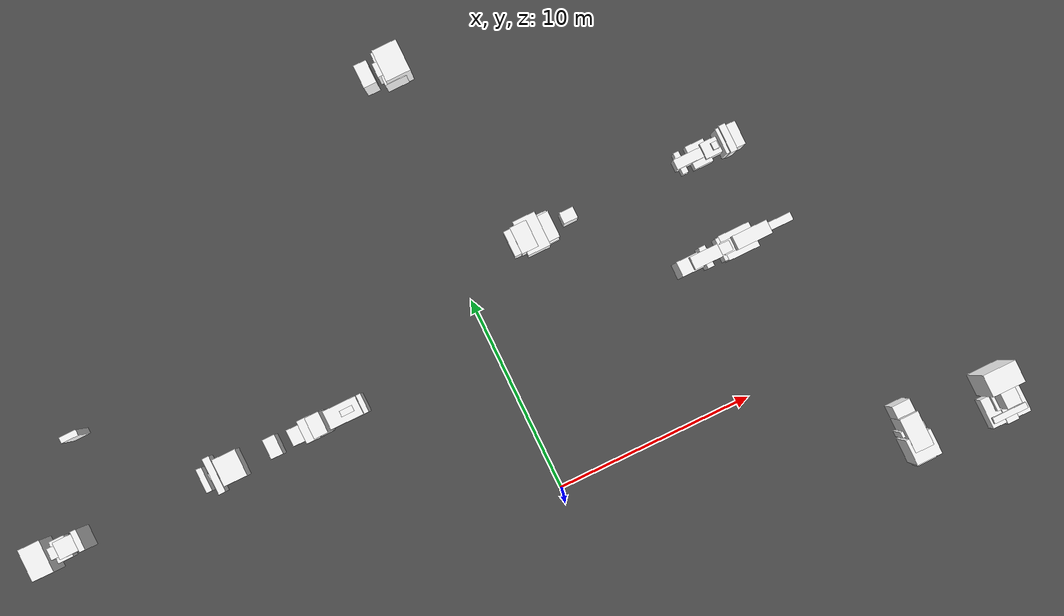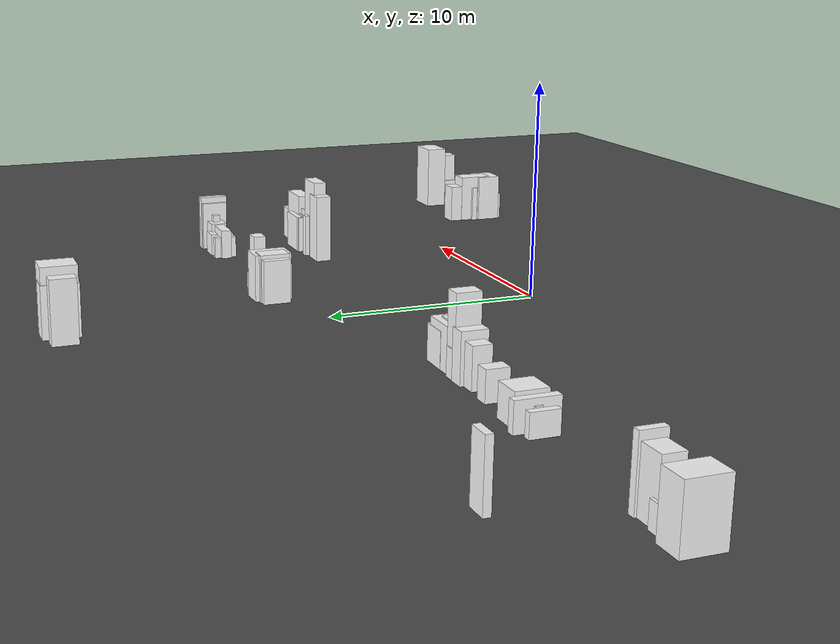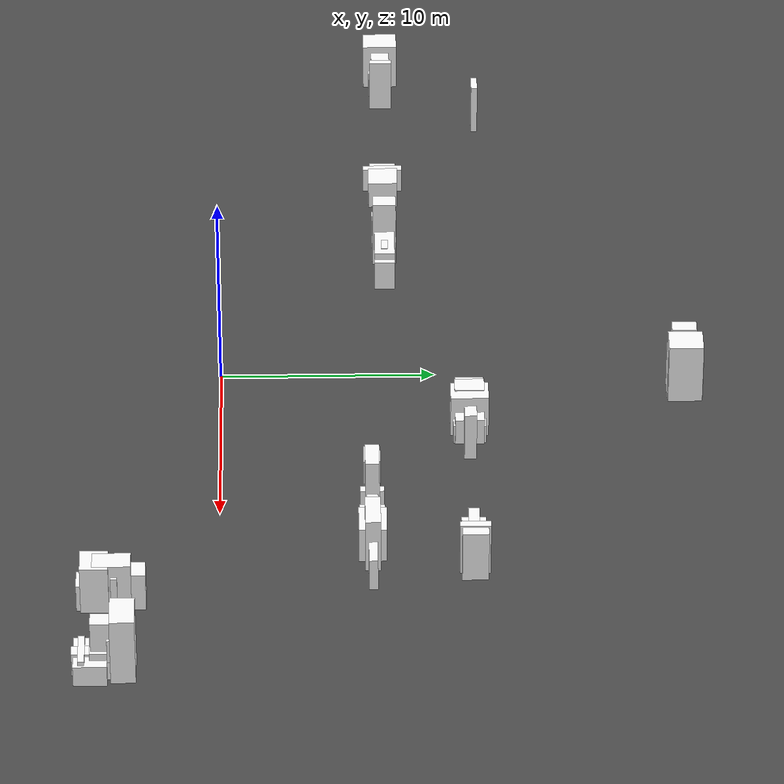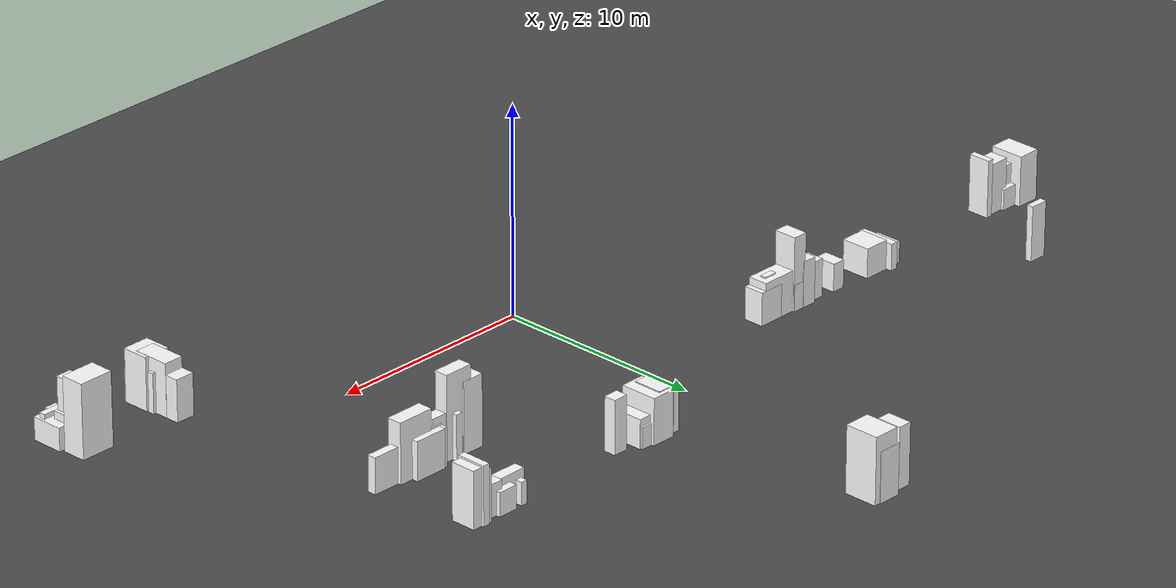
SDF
<sdf version="1.6">
 <world name="mirror_edge_world">
  <model name="ground_plane">
   <static>true</static>
   <link name="link">
    <collision name="collision">
     <geometry><plane><normal>0 0 1</normal><size>100 100</size></plane></geometry>
    </collision>
    <visual name="visual">
     <geometry><plane><normal>0 0 1</normal><size>100 100</size></plane></geometry>
     <material>
      <ambient>0.3 0.3 0.3 1</ambient>
      <diffuse>0.3 0.3 0.3 1</diffuse>
      <specular>0.5 0.5 0.5 1</specular>
      <emissive>0 0 0 1</emissive>
     </material>
    </visual>
   </link>
  </model>
  <model name="roadside_block_8_68_0">
   <static>true</static>
   <link name="link">
    <pose>1.5455001341135315 21.691395130526782 1.5699025654850813 0 0 0</pose>
    <collision name="collision">
     <geometry><box><size>1.2681851725085775 1.603759906914577 3.1398051309701627</size></box></geometry>
    </collision>
    <visual name="visual">
     <geometry><box><size>1.2681851725085775 1.603759906914577 3.1398051309701627</size></box></geometry>
     <material>
      <ambient>1 1 1 1</ambient>
      <diffuse>1 1 1 1</diffuse>
      <specular>0.9 0.9 0.9 1</specular>
      <emissive>0.05 0.05 0.05 1</emissive>
     </material>
    </visual>
   </link>
  </model>
  <model name="roadside_block_8_69_0">
   <static>true</static>
   <link name="link">
    <pose>1.347286900791671 21.691395130526782 1.1928629172023317 0 0 0</pose>
    <collision name="collision">
     <geometry><box><size>1.1070711377408684 1.6689474647098879 2.3857258344046635</size></box></geometry>
    </collision>
    <visual name="visual">
     <geometry><box><size>1.1070711377408684 1.6689474647098879 2.3857258344046635</size></box></geometry>
     <material>
      <ambient>1 1 1 1</ambient>
      <diffuse>1 1 1 1</diffuse>
      <specular>0.9 0.9 0.9 1</specular>
      <emissive>0.05 0.05 0.05 1</emissive>
     </material>
    </visual>
   </link>
  </model>
  <model name="roadside_block_8_71_0">
   <static>true</static>
   <link name="link">
    <pose>0.9508604341479518 21.691395130526782 1.2363751153148237 0 0 0</pose>
    <collision name="collision">
     <geometry><box><size>0.61038163859065 0.7026697707792131 2.4727502306296474</size></box></geometry>
    </collision>
    <visual name="visual">
     <geometry><box><size>0.61038163859065 0.7026697707792131 2.4727502306296474</size></box></geometry>
     <material>
      <ambient>1 1 1 1</ambient>
      <diffuse>1 1 1 1</diffuse>
      <specular>0.9 0.9 0.9 1</specular>
      <emissive>0.05 0.05 0.05 1</emissive>
     </material>
    </visual>
   </link>
  </model>
  <model name="roadside_block_8_75_0">
   <static>true</static>
   <link name="link">
    <pose>0.15800750086051174 21.691395130526782 1.4397845678132293 0 0 0</pose>
    <collision name="collision">
     <geometry><box><size>0.6595941446220618 1.1564362240642985 2.8795691356264586</size></box></geometry>
    </collision>
    <visual name="visual">
     <geometry><box><size>0.6595941446220618 1.1564362240642985 2.8795691356264586</size></box></geometry>
     <material>
      <ambient>1 1 1 1</ambient>
      <diffuse>1 1 1 1</diffuse>
      <specular>0.9 0.9 0.9 1</specular>
      <emissive>0.05 0.05 0.05 1</emissive>
     </material>
    </visual>
   </link>
  </model>
  <model name="roadside_block_9_1_0">
   <static>true</static>
   <link name="link">
    <pose>-23.761779622639356 7.800357720132312 1.208466739189968 0 0 0</pose>
    <collision name="collision">
     <geometry><box><size>1.1196893024955854 1.643471887455888 2.416933478379936</size></box></geometry>
    </collision>
    <visual name="visual">
     <geometry><box><size>1.1196893024955854 1.643471887455888 2.416933478379936</size></box></geometry>
     <material>
      <ambient>1 1 1 1</ambient>
      <diffuse>1 1 1 1</diffuse>
      <specular>0.9 0.9 0.9 1</specular>
      <emissive>0.05 0.05 0.05 1</emissive>
     </material>
    </visual>
   </link>
  </model>
  <model name="roadside_block_9_2_0">
   <static>true</static>
   <link name="link">
    <pose>-23.47755924527871 7.800357720132312 0.6017001309995709 0 0 0</pose>
    <collision name="collision">
     <geometry><box><size>1.1329089017507301 0.5602678851457557 1.2034002619991417</size></box></geometry>
    </collision>
    <visual name="visual">
     <geometry><box><size>1.1329089017507301 0.5602678851457557 1.2034002619991417</size></box></geometry>
     <material>
      <ambient>1 1 1 1</ambient>
      <diffuse>1 1 1 1</diffuse>
      <specular>0.9 0.9 0.9 1</specular>
      <emissive>0.05 0.05 0.05 1</emissive>
     </material>
    </visual>
   </link>
  </model>
  <model name="roadside_block_9_4_0">
   <static>true</static>
   <link name="link">
    <pose>-22.909118490557418 7.800357720132312 0.5 0 0 0</pose>
    <collision name="collision">
     <geometry><box><size>1.0084931682025393 1.1232799997482683 1.0</size></box></geometry>
    </collision>
    <visual name="visual">
     <geometry><box><size>1.0084931682025393 1.1232799997482683 1.0</size></box></geometry>
     <material>
      <ambient>1 1 1 1</ambient>
      <diffuse>1 1 1 1</diffuse>
      <specular>0.9 0.9 0.9 1</specular>
      <emissive>0.05 0.05 0.05 1</emissive>
     </material>
    </visual>
   </link>
  </model>
  <model name="roadside_block_9_5_0">
   <static>true</static>
   <link name="link">
    <pose>-22.624898113196775 7.800357720132312 0.977316711334635 0 0 0</pose>
    <collision name="collision">
     <geometry><box><size>1.1244083059379133 0.5843029058498634 1.95463342266927</size></box></geometry>
    </collision>
    <visual name="visual">
     <geometry><box><size>1.1244083059379133 0.5843029058498634 1.95463342266927</size></box></geometry>
     <material>
      <ambient>1 1 1 1</ambient>
      <diffuse>1 1 1 1</diffuse>
      <specular>0.9 0.9 0.9 1</specular>
      <emissive>0.05 0.05 0.05 1</emissive>
     </material>
    </visual>
   </link>
  </model>
  <model name="roadside_block_9_6_0">
   <static>true</static>
   <link name="link">
    <pose>-22.340677735836127 7.800357720132312 0.9081773589676736 0 0 0</pose>
    <collision name="collision">
     <geometry><box><size>1.258728185244772 0.3 1.8163547179353472</size></box></geometry>
    </collision>
    <visual name="visual">
     <geometry><box><size>1.258728185244772 0.3 1.8163547179353472</size></box></geometry>
     <material>
      <ambient>1 1 1 1</ambient>
      <diffuse>1 1 1 1</diffuse>
      <specular>0.9 0.9 0.9 1</specular>
      <emissive>0.05 0.05 0.05 1</emissive>
     </material>
    </visual>
   </link>
  </model>
  <model name="roadside_block_9_7_0">
   <static>true</static>
   <link name="link">
    <pose>-22.056457358475484 7.800357720132312 1.2133080872258961 0 0 0</pose>
    <collision name="collision">
     <geometry><box><size>1.2685403877237826 0.8757484849402473 2.4266161744517922</size></box></geometry>
    </collision>
    <visual name="visual">
     <geometry><box><size>1.2685403877237826 0.8757484849402473 2.4266161744517922</size></box></geometry>
     <material>
      <ambient>1 1 1 1</ambient>
      <diffuse>1 1 1 1</diffuse>
      <specular>0.9 0.9 0.9 1</specular>
      <emissive>0.05 0.05 0.05 1</emissive>
     </material>
    </visual>
   </link>
  </model>
  <model name="roadside_block_9_9_0">
   <static>true</static>
   <link name="link">
    <pose>-21.488016603754193 7.800357720132312 1.3787996805875875 0 0 0</pose>
    <collision name="collision">
     <geometry><box><size>0.30102294930992346 1.0558516145299937 2.757599361175175</size></box></geometry>
    </collision>
    <visual name="visual">
     <geometry><box><size>0.30102294930992346 1.0558516145299937 2.757599361175175</size></box></geometry>
     <material>
      <ambient>1 1 1 1</ambient>
      <diffuse>1 1 1 1</diffuse>
      <specular>0.9 0.9 0.9 1</specular>
      <emissive>0.05 0.05 0.05 1</emissive>
     </material>
    </visual>
   </link>
  </model>
  <model name="roadside_block_9_15_0">
   <static>true</static>
   <link name="link">
    <pose>-19.78269433959032 12.400357720132313 1.3198451373627755 0 0 0</pose>
    <collision name="collision">
     <geometry><box><size>0.8796754957842441 0.3 2.639690274725551</size></box></geometry>
    </collision>
    <visual name="visual">
     <geometry><box><size>0.8796754957842441 0.3 2.639690274725551</size></box></geometry>
     <material>
      <ambient>1 1 1 1</ambient>
      <diffuse>1 1 1 1</diffuse>
      <specular>0.9 0.9 0.9 1</specular>
      <emissive>0.05 0.05 0.05 1</emissive>
     </material>
    </visual>
   </link>
  </model>
  <model name="roadside_block_9_31_0">
   <static>true</static>
   <link name="link">
    <pose>-15.235168301819998 7.800357720132312 0.5 0 0 0</pose>
    <collision name="collision">
     <geometry><box><size>0.3 1.2320185075259336 1.0</size></box></geometry>
    </collision>
    <visual name="visual">
     <geometry><box><size>0.3 1.2320185075259336 1.0</size></box></geometry>
     <material>
      <ambient>1 1 1 1</ambient>
      <diffuse>1 1 1 1</diffuse>
      <specular>0.9 0.9 0.9 1</specular>
      <emissive>0.05 0.05 0.05 1</emissive>
     </material>
    </visual>
   </link>
  </model>
  <model name="roadside_block_9_33_0">
   <static>true</static>
   <link name="link">
    <pose>-14.666727547098708 7.800357720132312 0.6363516242355356 0 0 0</pose>
    <collision name="collision">
     <geometry><box><size>0.35920128537807894 1.8829835938757566 1.2727032484710712</size></box></geometry>
    </collision>
    <visual name="visual">
     <geometry><box><size>0.35920128537807894 1.8829835938757566 1.2727032484710712</size></box></geometry>
     <material>
      <ambient>1 1 1 1</ambient>
      <diffuse>1 1 1 1</diffuse>
      <specular>0.9 0.9 0.9 1</specular>
      <emissive>0.05 0.05 0.05 1</emissive>
     </material>
    </visual>
   </link>
  </model>
  <model name="roadside_block_9_34_0">
   <static>true</static>
   <link name="link">
    <pose>-14.382507169738062 7.800357720132312 0.5 0 0 0</pose>
    <collision name="collision">
     <geometry><box><size>1.1276304329290612 0.3 1.0</size></box></geometry>
    </collision>
    <visual name="visual">
     <geometry><box><size>1.1276304329290612 0.3 1.0</size></box></geometry>
     <material>
      <ambient>1 1 1 1</ambient>
      <diffuse>1 1 1 1</diffuse>
      <specular>0.9 0.9 0.9 1</specular>
      <emissive>0.05 0.05 0.05 1</emissive>
     </material>
    </visual>
   </link>
  </model>
  <model name="roadside_block_9_36_0">
   <static>true</static>
   <link name="link">
    <pose>-13.814066415016772 7.800357720132312 0.7075047041592218 0 0 0</pose>
    <collision name="collision">
     <geometry><box><size>1.2323963197255505 1.3903046777288204 1.4150094083184437</size></box></geometry>
    </collision>
    <visual name="visual">
     <geometry><box><size>1.2323963197255505 1.3903046777288204 1.4150094083184437</size></box></geometry>
     <material>
      <ambient>1 1 1 1</ambient>
      <diffuse>1 1 1 1</diffuse>
      <specular>0.9 0.9 0.9 1</specular>
      <emissive>0.05 0.05 0.05 1</emissive>
     </material>
    </visual>
   </link>
  </model>
  <model name="roadside_block_9_44_0">
   <static>true</static>
   <link name="link">
    <pose>-11.54030339613161 7.800357720132312 0.6649641546089173 0 0 0</pose>
    <collision name="collision">
     <geometry><box><size>0.6389378458912294 1.0111972842181307 1.3299283092178347</size></box></geometry>
    </collision>
    <visual name="visual">
     <geometry><box><size>0.6389378458912294 1.0111972842181307 1.3299283092178347</size></box></geometry>
     <material>
      <ambient>1 1 1 1</ambient>
      <diffuse>1 1 1 1</diffuse>
      <specular>0.9 0.9 0.9 1</specular>
      <emissive>0.05 0.05 0.05 1</emissive>
     </material>
    </visual>
   </link>
  </model>
  <model name="roadside_block_9_50_0">
   <static>true</static>
   <link name="link">
    <pose>-9.834981131967739 7.800357720132312 0.9045486367181103 0 0 0</pose>
    <collision name="collision">
     <geometry><box><size>1.4848936732761606 0.8422874247906627 1.8090972734362205</size></box></geometry>
    </collision>
    <visual name="visual">
     <geometry><box><size>1.4848936732761606 0.8422874247906627 1.8090972734362205</size></box></geometry>
     <material>
      <ambient>1 1 1 1</ambient>
      <diffuse>1 1 1 1</diffuse>
      <specular>0.9 0.9 0.9 1</specular>
      <emissive>0.05 0.05 0.05 1</emissive>
     </material>
    </visual>
   </link>
  </model>
  <model name="roadside_block_9_51_0">
   <static>true</static>
   <link name="link">
    <pose>-9.550760754607094 7.800357720132312 1.0913522285882313 0 0 0</pose>
    <collision name="collision">
     <geometry><box><size>0.7269023016896262 1.1690379921361627 2.1827044571764627</size></box></geometry>
    </collision>
    <visual name="visual">
     <geometry><box><size>0.7269023016896262 1.1690379921361627 2.1827044571764627</size></box></geometry>
     <material>
      <ambient>1 1 1 1</ambient>
      <diffuse>1 1 1 1</diffuse>
      <specular>0.9 0.9 0.9 1</specular>
      <emissive>0.05 0.05 0.05 1</emissive>
     </material>
    </visual>
   </link>
  </model>
  <model name="roadside_block_9_52_0">
   <static>true</static>
   <link name="link">
    <pose>-9.266540377246448 7.800357720132312 0.6285851355060795 0 0 0</pose>
    <collision name="collision">
     <geometry><box><size>1.2439937053710597 1.1367111312681766 1.257170271012159</size></box></geometry>
    </collision>
    <visual name="visual">
     <geometry><box><size>1.2439937053710597 1.1367111312681766 1.257170271012159</size></box></geometry>
     <material>
      <ambient>1 1 1 1</ambient>
      <diffuse>1 1 1 1</diffuse>
      <specular>0.9 0.9 0.9 1</specular>
      <emissive>0.05 0.05 0.05 1</emissive>
     </material>
    </visual>
   </link>
  </model>
  <model name="roadside_block_9_53_0">
   <static>true</static>
   <link name="link">
    <pose>-8.982319999885803 7.800357720132312 1.7573259977247582 0 0 0</pose>
    <collision name="collision">
     <geometry><box><size>0.7214010888602527 1.0830540666490318 3.5146519954495163</size></box></geometry>
    </collision>
    <visual name="visual">
     <geometry><box><size>0.7214010888602527 1.0830540666490318 3.5146519954495163</size></box></geometry>
     <material>
      <ambient>1 1 1 1</ambient>
      <diffuse>1 1 1 1</diffuse>
      <specular>0.9 0.9 0.9 1</specular>
      <emissive>0.05 0.05 0.05 1</emissive>
     </material>
    </visual>
   </link>
  </model>
  <model name="roadside_block_9_57_0">
   <static>true</static>
   <link name="link">
    <pose>-7.845438490443222 7.800357720132312 0.9675865356964877 0 0 0</pose>
    <collision name="collision">
     <geometry><box><size>1.8799113678693724 0.9498543068529453 1.9351730713929753</size></box></geometry>
    </collision>
    <visual name="visual">
     <geometry><box><size>1.8799113678693724 0.9498543068529453 1.9351730713929753</size></box></geometry>
     <material>
      <ambient>1 1 1 1</ambient>
      <diffuse>1 1 1 1</diffuse>
      <specular>0.9 0.9 0.9 1</specular>
      <emissive>0.05 0.05 0.05 1</emissive>
     </material>
    </visual>
   </link>
  </model>
  <model name="roadside_block_9_58_0">
   <static>true</static>
   <link name="link">
    <pose>-7.561218113082578 7.800357720132312 0.999481506903204 0 0 0</pose>
    <collision name="collision">
     <geometry><box><size>0.6613131502061825 0.3 1.998963013806408</size></box></geometry>
    </collision>
    <visual name="visual">
     <geometry><box><size>0.6613131502061825 0.3 1.998963013806408</size></box></geometry>
     <material>
      <ambient>1 1 1 1</ambient>
      <diffuse>1 1 1 1</diffuse>
      <specular>0.9 0.9 0.9 1</specular>
      <emissive>0.05 0.05 0.05 1</emissive>
     </material>
    </visual>
   </link>
  </model>
  <model name="roadside_block_9_59_0">
   <static>true</static>
   <link name="link">
    <pose>-7.276997735721931 7.800357720132312 0.7843324608625015 0 0 0</pose>
    <collision name="collision">
     <geometry><box><size>1.2385333254280784 0.9685708397871888 1.568664921725003</size></box></geometry>
    </collision>
    <visual name="visual">
     <geometry><box><size>1.2385333254280784 0.9685708397871888 1.568664921725003</size></box></geometry>
     <material>
      <ambient>1 1 1 1</ambient>
      <diffuse>1 1 1 1</diffuse>
      <specular>0.9 0.9 0.9 1</specular>
      <emissive>0.05 0.05 0.05 1</emissive>
     </material>
    </visual>
   </link>
  </model>
  <model name="roadside_block_10_1_0">
   <static>true</static>
   <link name="link">
    <pose>14.829998643595474 6.955138398820165 0.8446945994044851 0 0 0</pose>
    <collision name="collision">
     <geometry><box><size>1.3316512647084853 0.3980655655277219 1.6893891988089702</size></box></geometry>
    </collision>
    <visual name="visual">
     <geometry><box><size>1.3316512647084853 0.3980655655277219 1.6893891988089702</size></box></geometry>
     <material>
      <ambient>1 1 1 1</ambient>
      <diffuse>1 1 1 1</diffuse>
      <specular>0.9 0.9 0.9 1</specular>
      <emissive>0.05 0.05 0.05 1</emissive>
     </material>
    </visual>
   </link>
  </model>
  <model name="roadside_block_10_2_0">
   <static>true</static>
   <link name="link">
    <pose>14.635997287190948 11.555138398820166 1.338755265137048 0 0 0</pose>
    <collision name="collision">
     <geometry><box><size>0.5231664556141569 1.1960529744878163 2.677510530274096</size></box></geometry>
    </collision>
    <visual name="visual">
     <geometry><box><size>0.5231664556141569 1.1960529744878163 2.677510530274096</size></box></geometry>
     <material>
      <ambient>1 1 1 1</ambient>
      <diffuse>1 1 1 1</diffuse>
      <specular>0.9 0.9 0.9 1</specular>
      <emissive>0.05 0.05 0.05 1</emissive>
     </material>
    </visual>
   </link>
  </model>
  <model name="roadside_block_10_4_0">
   <static>true</static>
   <link name="link">
    <pose>14.247994574381899 11.555138398820166 1.385129045588094 0 0 0</pose>
    <collision name="collision">
     <geometry><box><size>0.3453461466224327 1.396816774175178 2.770258091176188</size></box></geometry>
    </collision>
    <visual name="visual">
     <geometry><box><size>0.3453461466224327 1.396816774175178 2.770258091176188</size></box></geometry>
     <material>
      <ambient>1 1 1 1</ambient>
      <diffuse>1 1 1 1</diffuse>
      <specular>0.9 0.9 0.9 1</specular>
      <emissive>0.05 0.05 0.05 1</emissive>
     </material>
    </visual>
   </link>
  </model>
  <model name="roadside_block_10_5_0">
   <static>true</static>
   <link name="link">
    <pose>14.053993217977373 11.555138398820166 1.233772183467093 0 0 0</pose>
    <collision name="collision">
     <geometry><box><size>0.3 1.294046173382335 2.467544366934186</size></box></geometry>
    </collision>
    <visual name="visual">
     <geometry><box><size>0.3 1.294046173382335 2.467544366934186</size></box></geometry>
     <material>
      <ambient>1 1 1 1</ambient>
      <diffuse>1 1 1 1</diffuse>
      <specular>0.9 0.9 0.9 1</specular>
      <emissive>0.05 0.05 0.05 1</emissive>
     </material>
    </visual>
   </link>
  </model>
  <model name="roadside_block_10_6_0">
   <static>true</static>
   <link name="link">
    <pose>13.859991861572848 11.555138398820166 0.7629949746808705 0 0 0</pose>
    <collision name="collision">
     <geometry><box><size>1.6172015206935755 0.8121040130433472 1.525989949361741</size></box></geometry>
    </collision>
    <visual name="visual">
     <geometry><box><size>1.6172015206935755 0.8121040130433472 1.525989949361741</size></box></geometry>
     <material>
      <ambient>1 1 1 1</ambient>
      <diffuse>1 1 1 1</diffuse>
      <specular>0.9 0.9 0.9 1</specular>
      <emissive>0.05 0.05 0.05 1</emissive>
     </material>
    </visual>
   </link>
  </model>
  <model name="roadside_block_10_7_0">
   <static>true</static>
   <link name="link">
    <pose>13.665990505168322 11.555138398820166 0.9396427301670813 0 0 0</pose>
    <collision name="collision">
     <geometry><box><size>0.3 0.36568188590333384 1.8792854603341627</size></box></geometry>
    </collision>
    <visual name="visual">
     <geometry><box><size>0.3 0.36568188590333384 1.8792854603341627</size></box></geometry>
     <material>
      <ambient>1 1 1 1</ambient>
      <diffuse>1 1 1 1</diffuse>
      <specular>0.9 0.9 0.9 1</specular>
      <emissive>0.05 0.05 0.05 1</emissive>
     </material>
    </visual>
   </link>
  </model>
  <model name="roadside_block_10_9_0">
   <static>true</static>
   <link name="link">
    <pose>13.277987792359273 6.955138398820165 1.4189813727141467 0 0 0</pose>
    <collision name="collision">
     <geometry><box><size>1.7992035182380492 0.6984098471255313 2.8379627454282934</size></box></geometry>
    </collision>
    <visual name="visual">
     <geometry><box><size>1.7992035182380492 0.6984098471255313 2.8379627454282934</size></box></geometry>
     <material>
      <ambient>1 1 1 1</ambient>
      <diffuse>1 1 1 1</diffuse>
      <specular>0.9 0.9 0.9 1</specular>
      <emissive>0.05 0.05 0.05 1</emissive>
     </material>
    </visual>
   </link>
  </model>
  <model name="roadside_block_10_10_0">
   <static>true</static>
   <link name="link">
    <pose>13.083986435954747 6.955138398820165 1.2335159673411005 0 0 0</pose>
    <collision name="collision">
     <geometry><box><size>0.6678458986934379 0.3881478492527146 2.467031934682201</size></box></geometry>
    </collision>
    <visual name="visual">
     <geometry><box><size>0.6678458986934379 0.3881478492527146 2.467031934682201</size></box></geometry>
     <material>
      <ambient>1 1 1 1</ambient>
      <diffuse>1 1 1 1</diffuse>
      <specular>0.9 0.9 0.9 1</specular>
      <emissive>0.05 0.05 0.05 1</emissive>
     </material>
    </visual>
   </link>
  </model>
  <model name="roadside_block_10_11_0">
   <static>true</static>
   <link name="link">
    <pose>12.889985079550222 11.555138398820166 0.5581558989652429 0 0 0</pose>
    <collision name="collision">
     <geometry><box><size>0.9708689330406998 1.1799000494889604 1.1163117979304857</size></box></geometry>
    </collision>
    <visual name="visual">
     <geometry><box><size>0.9708689330406998 1.1799000494889604 1.1163117979304857</size></box></geometry>
     <material>
      <ambient>1 1 1 1</ambient>
      <diffuse>1 1 1 1</diffuse>
      <specular>0.9 0.9 0.9 1</specular>
      <emissive>0.05 0.05 0.05 1</emissive>
     </material>
    </visual>
   </link>
  </model>
  <model name="roadside_block_10_12_0">
   <static>true</static>
   <link name="link">
    <pose>12.695983723145696 6.955138398820165 0.919200764106669 0 0 0</pose>
    <collision name="collision">
     <geometry><box><size>1.6218398461749217 1.276565542557126 1.838401528213338</size></box></geometry>
    </collision>
    <visual name="visual">
     <geometry><box><size>1.6218398461749217 1.276565542557126 1.838401528213338</size></box></geometry>
     <material>
      <ambient>1 1 1 1</ambient>
      <diffuse>1 1 1 1</diffuse>
      <specular>0.9 0.9 0.9 1</specular>
      <emissive>0.05 0.05 0.05 1</emissive>
     </material>
    </visual>
   </link>
  </model>
  <model name="roadside_block_10_13_0">
   <static>true</static>
   <link name="link">
    <pose>12.50198236674117 6.955138398820165 0.910593659091252 0 0 0</pose>
    <collision name="collision">
     <geometry><box><size>1.5954015906427075 1.1601870040044107 1.821187318182504</size></box></geometry>
    </collision>
    <visual name="visual">
     <geometry><box><size>1.5954015906427075 1.1601870040044107 1.821187318182504</size></box></geometry>
     <material>
      <ambient>1 1 1 1</ambient>
      <diffuse>1 1 1 1</diffuse>
      <specular>0.9 0.9 0.9 1</specular>
      <emissive>0.05 0.05 0.05 1</emissive>
     </material>
    </visual>
   </link>
  </model>
  <model name="roadside_block_10_14_0">
   <static>true</static>
   <link name="link">
    <pose>12.307981010336647 11.555138398820166 0.7366434368715948 0 0 0</pose>
    <collision name="collision">
     <geometry><box><size>1.4205201532482576 0.5067399897564487 1.4732868737431897</size></box></geometry>
    </collision>
    <visual name="visual">
     <geometry><box><size>1.4205201532482576 0.5067399897564487 1.4732868737431897</size></box></geometry>
     <material>
      <ambient>1 1 1 1</ambient>
      <diffuse>1 1 1 1</diffuse>
      <specular>0.9 0.9 0.9 1</specular>
      <emissive>0.05 0.05 0.05 1</emissive>
     </material>
    </visual>
   </link>
  </model>
  <model name="roadside_block_10_15_0">
   <static>true</static>
   <link name="link">
    <pose>12.113979653932121 6.955138398820165 0.9634991506307159 0 0 0</pose>
    <collision name="collision">
     <geometry><box><size>0.6058633960035713 0.6389689190604289 1.9269983012614318</size></box></geometry>
    </collision>
    <visual name="visual">
     <geometry><box><size>0.6058633960035713 0.6389689190604289 1.9269983012614318</size></box></geometry>
     <material>
      <ambient>1 1 1 1</ambient>
      <diffuse>1 1 1 1</diffuse>
      <specular>0.9 0.9 0.9 1</specular>
      <emissive>0.05 0.05 0.05 1</emissive>
     </material>
    </visual>
   </link>
  </model>
  <model name="roadside_block_10_16_0">
   <static>true</static>
   <link name="link">
    <pose>11.919978297527596 11.555138398820166 0.5391226015048431 0 0 0</pose>
    <collision name="collision">
     <geometry><box><size>0.3 1.1135085236043425 1.0782452030096863</size></box></geometry>
    </collision>
    <visual name="visual">
     <geometry><box><size>0.3 1.1135085236043425 1.0782452030096863</size></box></geometry>
     <material>
      <ambient>1 1 1 1</ambient>
      <diffuse>1 1 1 1</diffuse>
      <specular>0.9 0.9 0.9 1</specular>
      <emissive>0.05 0.05 0.05 1</emissive>
     </material>
    </visual>
   </link>
  </model>
  <model name="roadside_block_10_17_0">
   <static>true</static>
   <link name="link">
    <pose>11.72597694112307 6.955138398820165 1.1220801041228263 0 0 0</pose>
    <collision name="collision">
     <geometry><box><size>1.00411976719488 0.5189999004319596 2.2441602082456527</size></box></geometry>
    </collision>
    <visual name="visual">
     <geometry><box><size>1.00411976719488 0.5189999004319596 2.2441602082456527</size></box></geometry>
     <material>
      <ambient>1 1 1 1</ambient>
      <diffuse>1 1 1 1</diffuse>
      <specular>0.9 0.9 0.9 1</specular>
      <emissive>0.05 0.05 0.05 1</emissive>
     </material>
    </visual>
   </link>
  </model>
  <model name="roadside_block_10_21_0">
   <static>true</static>
   <link name="link">
    <pose>10.94997151550497 6.955138398820165 1.0659762945501299 0 0 0</pose>
    <collision name="collision">
     <geometry><box><size>0.3482036800544187 1.088715273566672 2.1319525891002598</size></box></geometry>
    </collision>
    <visual name="visual">
     <geometry><box><size>0.3482036800544187 1.088715273566672 2.1319525891002598</size></box></geometry>
     <material>
      <ambient>1 1 1 1</ambient>
      <diffuse>1 1 1 1</diffuse>
      <specular>0.9 0.9 0.9 1</specular>
      <emissive>0.05 0.05 0.05 1</emissive>
     </material>
    </visual>
   </link>
  </model>
  <model name="roadside_block_10_22_0">
   <static>true</static>
   <link name="link">
    <pose>10.755970159100444 6.955138398820165 2.0 0 0 0</pose>
    <collision name="collision">
     <geometry><box><size>1.4208438997168062 0.6425423877021081 4.0</size></box></geometry>
    </collision>
    <visual name="visual">
     <geometry><box><size>1.4208438997168062 0.6425423877021081 4.0</size></box></geometry>
     <material>
      <ambient>1 1 1 1</ambient>
      <diffuse>1 1 1 1</diffuse>
      <specular>0.9 0.9 0.9 1</specular>
      <emissive>0.05 0.05 0.05 1</emissive>
     </material>
    </visual>
   </link>
  </model>
  <model name="roadside_block_10_24_0">
   <static>true</static>
   <link name="link">
    <pose>10.367967446291395 6.955138398820165 1.428748651817261 0 0 0</pose>
    <collision name="collision">
     <geometry><box><size>0.548000267651054 0.3 2.857497303634522</size></box></geometry>
    </collision>
    <visual name="visual">
     <geometry><box><size>0.548000267651054 0.3 2.857497303634522</size></box></geometry>
     <material>
      <ambient>1 1 1 1</ambient>
      <diffuse>1 1 1 1</diffuse>
      <specular>0.9 0.9 0.9 1</specular>
      <emissive>0.05 0.05 0.05 1</emissive>
     </material>
    </visual>
   </link>
  </model>
  <model name="roadside_block_10_26_0">
   <static>true</static>
   <link name="link">
    <pose>9.979964733482344 6.955138398820165 1.6869307256316977 0 0 0</pose>
    <collision name="collision">
     <geometry><box><size>1.0953755839225268 0.7562822889729464 3.3738614512633953</size></box></geometry>
    </collision>
    <visual name="visual">
     <geometry><box><size>1.0953755839225268 0.7562822889729464 3.3738614512633953</size></box></geometry>
     <material>
      <ambient>1 1 1 1</ambient>
      <diffuse>1 1 1 1</diffuse>
      <specular>0.9 0.9 0.9 1</specular>
      <emissive>0.05 0.05 0.05 1</emissive>
     </material>
    </visual>
   </link>
  </model>
  <model name="roadside_block_10_27_0">
   <static>true</static>
   <link name="link">
    <pose>9.785963377077818 6.955138398820165 0.6917946914484914 0 0 0</pose>
    <collision name="collision">
     <geometry><box><size>0.3 0.45042955572319965 1.3835893828969827</size></box></geometry>
    </collision>
    <visual name="visual">
     <geometry><box><size>0.3 0.45042955572319965 1.3835893828969827</size></box></geometry>
     <material>
      <ambient>1 1 1 1</ambient>
      <diffuse>1 1 1 1</diffuse>
      <specular>0.9 0.9 0.9 1</specular>
      <emissive>0.05 0.05 0.05 1</emissive>
     </material>
    </visual>
   </link>
  </model>
  <model name="roadside_block_10_47_0">
   <static>true</static>
   <link name="link">
    <pose>5.905936248987315 11.555138398820166 1.2683082678957167 0 0 0</pose>
    <collision name="collision">
     <geometry><box><size>0.7203650332842613 0.5655223086690164 2.5366165357914334</size></box></geometry>
    </collision>
    <visual name="visual">
     <geometry><box><size>0.7203650332842613 0.5655223086690164 2.5366165357914334</size></box></geometry>
     <material>
      <ambient>1 1 1 1</ambient>
      <diffuse>1 1 1 1</diffuse>
      <specular>0.9 0.9 0.9 1</specular>
      <emissive>0.05 0.05 0.05 1</emissive>
     </material>
    </visual>
   </link>
  </model>
  <model name="roadside_block_10_55_0">
   <static>true</static>
   <link name="link">
    <pose>4.353925397751112 11.555138398820166 0.5 0 0 0</pose>
    <collision name="collision">
     <geometry><box><size>1.4880775413789917 1.526608751217258 1.0</size></box></geometry>
    </collision>
    <visual name="visual">
     <geometry><box><size>1.4880775413789917 1.526608751217258 1.0</size></box></geometry>
     <material>
      <ambient>1 1 1 1</ambient>
      <diffuse>1 1 1 1</diffuse>
      <specular>0.9 0.9 0.9 1</specular>
      <emissive>0.05 0.05 0.05 1</emissive>
     </material>
    </visual>
   </link>
  </model>
  <model name="roadside_block_10_56_0">
   <static>true</static>
   <link name="link">
    <pose>4.159924041346587 11.555138398820166 0.6890270423703835 0 0 0</pose>
    <collision name="collision">
     <geometry><box><size>2.0 1.3540760622158023 1.378054084740767</size></box></geometry>
    </collision>
    <visual name="visual">
     <geometry><box><size>2.0 1.3540760622158023 1.378054084740767</size></box></geometry>
     <material>
      <ambient>1 1 1 1</ambient>
      <diffuse>1 1 1 1</diffuse>
      <specular>0.9 0.9 0.9 1</specular>
      <emissive>0.05 0.05 0.05 1</emissive>
     </material>
    </visual>
   </link>
  </model>
  <model name="roadside_block_10_57_0">
   <static>true</static>
   <link name="link">
    <pose>3.9659226849420612 11.555138398820166 1.09850544514671 0 0 0</pose>
    <collision name="collision">
     <geometry><box><size>1.1639613678644727 1.7620258030957925 2.19701089029342</size></box></geometry>
    </collision>
    <visual name="visual">
     <geometry><box><size>1.1639613678644727 1.7620258030957925 2.19701089029342</size></box></geometry>
     <material>
      <ambient>1 1 1 1</ambient>
      <diffuse>1 1 1 1</diffuse>
      <specular>0.9 0.9 0.9 1</specular>
      <emissive>0.05 0.05 0.05 1</emissive>
     </material>
    </visual>
   </link>
  </model>
  <model name="roadside_block_10_59_0">
   <static>true</static>
   <link name="link">
    <pose>3.57791997213301 11.555138398820166 1.121408896665218 0 0 0</pose>
    <collision name="collision">
     <geometry><box><size>0.8527677389846571 1.3769899193530295 2.242817793330436</size></box></geometry>
    </collision>
    <visual name="visual">
     <geometry><box><size>0.8527677389846571 1.3769899193530295 2.242817793330436</size></box></geometry>
     <material>
      <ambient>1 1 1 1</ambient>
      <diffuse>1 1 1 1</diffuse>
      <specular>0.9 0.9 0.9 1</specular>
      <emissive>0.05 0.05 0.05 1</emissive>
     </material>
    </visual>
   </link>
  </model>
  <model name="roadside_block_10_60_0">
   <static>true</static>
   <link name="link">
    <pose>3.3839186157284864 11.555138398820166 1.0297744711043797 0 0 0</pose>
    <collision name="collision">
     <geometry><box><size>1.1796115897670605 1.3028101924612652 2.0595489422087594</size></box></geometry>
    </collision>
    <visual name="visual">
     <geometry><box><size>1.1796115897670605 1.3028101924612652 2.0595489422087594</size></box></geometry>
     <material>
      <ambient>1 1 1 1</ambient>
      <diffuse>1 1 1 1</diffuse>
      <specular>0.9 0.9 0.9 1</specular>
      <emissive>0.05 0.05 0.05 1</emissive>
     </material>
    </visual>
   </link>
  </model>
  <model name="roadside_block_11_0_0">
   <static>true</static>
   <link name="link">
    <pose>20.818585601665422 -6.04 0.6592331872322235 0 0 0</pose>
    <collision name="collision">
     <geometry><box><size>1.7617902277550204 0.3 1.318466374464447</size></box></geometry>
    </collision>
    <visual name="visual">
     <geometry><box><size>1.7617902277550204 0.3 1.318466374464447</size></box></geometry>
     <material>
      <ambient>1 1 1 1</ambient>
      <diffuse>1 1 1 1</diffuse>
      <specular>0.9 0.9 0.9 1</specular>
      <emissive>0.05 0.05 0.05 1</emissive>
     </material>
    </visual>
   </link>
  </model>
  <model name="roadside_block_11_1_0">
   <static>true</static>
   <link name="link">
    <pose>16.21858560166542 -5.94279444329561 0.7171256952995833 0 0 0</pose>
    <collision name="collision">
     <geometry><box><size>1.0218548690791396 0.8806309328222691 1.4342513905991665</size></box></geometry>
    </collision>
    <visual name="visual">
     <geometry><box><size>1.0218548690791396 0.8806309328222691 1.4342513905991665</size></box></geometry>
     <material>
      <ambient>1 1 1 1</ambient>
      <diffuse>1 1 1 1</diffuse>
      <specular>0.9 0.9 0.9 1</specular>
      <emissive>0.05 0.05 0.05 1</emissive>
     </material>
    </visual>
   </link>
  </model>
  <model name="roadside_block_11_2_0">
   <static>true</static>
   <link name="link">
    <pose>20.818585601665422 -5.84558888659122 0.6080403418299508 0 0 0</pose>
    <collision name="collision">
     <geometry><box><size>0.597794503115904 1.2800272864179905 1.2160806836599016</size></box></geometry>
    </collision>
    <visual name="visual">
     <geometry><box><size>0.597794503115904 1.2800272864179905 1.2160806836599016</size></box></geometry>
     <material>
      <ambient>1 1 1 1</ambient>
      <diffuse>1 1 1 1</diffuse>
      <specular>0.9 0.9 0.9 1</specular>
      <emissive>0.05 0.05 0.05 1</emissive>
     </material>
    </visual>
   </link>
  </model>
  <model name="roadside_block_11_3_0">
   <static>true</static>
   <link name="link">
    <pose>20.818585601665422 -5.74838332988683 0.5 0 0 0</pose>
    <collision name="collision">
     <geometry><box><size>1.6684795714755465 0.8863503788529439 1.0</size></box></geometry>
    </collision>
    <visual name="visual">
     <geometry><box><size>1.6684795714755465 0.8863503788529439 1.0</size></box></geometry>
     <material>
      <ambient>1 1 1 1</ambient>
      <diffuse>1 1 1 1</diffuse>
      <specular>0.9 0.9 0.9 1</specular>
      <emissive>0.05 0.05 0.05 1</emissive>
     </material>
    </visual>
   </link>
  </model>
  <model name="roadside_block_11_4_0">
   <static>true</static>
   <link name="link">
    <pose>20.818585601665422 -5.65117777318244 0.5443998795984866 0 0 0</pose>
    <collision name="collision">
     <geometry><box><size>2.0 1.5097748846730648 1.0887997591969731</size></box></geometry>
    </collision>
    <visual name="visual">
     <geometry><box><size>2.0 1.5097748846730648 1.0887997591969731</size></box></geometry>
     <material>
      <ambient>1 1 1 1</ambient>
      <diffuse>1 1 1 1</diffuse>
      <specular>0.9 0.9 0.9 1</specular>
      <emissive>0.05 0.05 0.05 1</emissive>
     </material>
    </visual>
   </link>
  </model>
  <model name="roadside_block_11_5_0">
   <static>true</static>
   <link name="link">
    <pose>16.21858560166542 -5.5539722164780505 1.2562732214669672 0 0 0</pose>
    <collision name="collision">
     <geometry><box><size>1.306783600856209 1.2771116414912738 2.5125464429339344</size></box></geometry>
    </collision>
    <visual name="visual">
     <geometry><box><size>1.306783600856209 1.2771116414912738 2.5125464429339344</size></box></geometry>
     <material>
      <ambient>1 1 1 1</ambient>
      <diffuse>1 1 1 1</diffuse>
      <specular>0.9 0.9 0.9 1</specular>
      <emissive>0.05 0.05 0.05 1</emissive>
     </material>
    </visual>
   </link>
  </model>
  <model name="roadside_block_11_6_0">
   <static>true</static>
   <link name="link">
    <pose>16.21858560166542 -5.456766659773661 0.9364050169622257 0 0 0</pose>
    <collision name="collision">
     <geometry><box><size>0.554698169642059 0.6577655517935901 1.8728100339244513</size></box></geometry>
    </collision>
    <visual name="visual">
     <geometry><box><size>0.554698169642059 0.6577655517935901 1.8728100339244513</size></box></geometry>
     <material>
      <ambient>1 1 1 1</ambient>
      <diffuse>1 1 1 1</diffuse>
      <specular>0.9 0.9 0.9 1</specular>
      <emissive>0.05 0.05 0.05 1</emissive>
     </material>
    </visual>
   </link>
  </model>
  <model name="roadside_block_11_7_0">
   <static>true</static>
   <link name="link">
    <pose>16.21858560166542 -5.359561103069271 1.1687049436059285 0 0 0</pose>
    <collision name="collision">
     <geometry><box><size>0.8147913935840844 0.7765771244035002 2.337409887211857</size></box></geometry>
    </collision>
    <visual name="visual">
     <geometry><box><size>0.8147913935840844 0.7765771244035002 2.337409887211857</size></box></geometry>
     <material>
      <ambient>1 1 1 1</ambient>
      <diffuse>1 1 1 1</diffuse>
      <specular>0.9 0.9 0.9 1</specular>
      <emissive>0.05 0.05 0.05 1</emissive>
     </material>
    </visual>
   </link>
  </model>
  <model name="roadside_block_11_8_0">
   <static>true</static>
   <link name="link">
    <pose>20.818585601665422 -5.262355546364881 0.7295885257420831 0 0 0</pose>
    <collision name="collision">
     <geometry><box><size>1.0768627395551056 0.8359625883989079 1.4591770514841662</size></box></geometry>
    </collision>
    <visual name="visual">
     <geometry><box><size>1.0768627395551056 0.8359625883989079 1.4591770514841662</size></box></geometry>
     <material>
      <ambient>1 1 1 1</ambient>
      <diffuse>1 1 1 1</diffuse>
      <specular>0.9 0.9 0.9 1</specular>
      <emissive>0.05 0.05 0.05 1</emissive>
     </material>
    </visual>
   </link>
  </model>
  <model name="roadside_block_11_9_0">
   <static>true</static>
   <link name="link">
    <pose>16.21858560166542 -5.165149989660491 0.8890691134309325 0 0 0</pose>
    <collision name="collision">
     <geometry><box><size>0.980277111876225 0.3 1.778138226861865</size></box></geometry>
    </collision>
    <visual name="visual">
     <geometry><box><size>0.980277111876225 0.3 1.778138226861865</size></box></geometry>
     <material>
      <ambient>1 1 1 1</ambient>
      <diffuse>1 1 1 1</diffuse>
      <specular>0.9 0.9 0.9 1</specular>
      <emissive>0.05 0.05 0.05 1</emissive>
     </material>
    </visual>
   </link>
  </model>
  <model name="roadside_block_11_10_0">
   <static>true</static>
   <link name="link">
    <pose>20.818585601665422 -5.067944432956101 1.045330107043016 0 0 0</pose>
    <collision name="collision">
     <geometry><box><size>0.3 0.7915781368889183 2.090660214086032</size></box></geometry>
    </collision>
    <visual name="visual">
     <geometry><box><size>0.3 0.7915781368889183 2.090660214086032</size></box></geometry>
     <material>
      <ambient>1 1 1 1</ambient>
      <diffuse>1 1 1 1</diffuse>
      <specular>0.9 0.9 0.9 1</specular>
      <emissive>0.05 0.05 0.05 1</emissive>
     </material>
    </visual>
   </link>
  </model>
  <model name="roadside_block_11_11_0">
   <static>true</static>
   <link name="link">
    <pose>20.818585601665422 -4.970738876251711 1.5079323875121635 0 0 0</pose>
    <collision name="collision">
     <geometry><box><size>0.7549060881798287 1.2946140416209733 3.015864775024327</size></box></geometry>
    </collision>
    <visual name="visual">
     <geometry><box><size>0.7549060881798287 1.2946140416209733 3.015864775024327</size></box></geometry>
     <material>
      <ambient>1 1 1 1</ambient>
      <diffuse>1 1 1 1</diffuse>
      <specular>0.9 0.9 0.9 1</specular>
      <emissive>0.05 0.05 0.05 1</emissive>
     </material>
    </visual>
   </link>
  </model>
  <model name="roadside_block_11_12_0">
   <static>true</static>
   <link name="link">
    <pose>20.818585601665422 -4.873533319547321 0.5 0 0 0</pose>
    <collision name="collision">
     <geometry><box><size>1.1718170443356737 1.376534446980151 1.0</size></box></geometry>
    </collision>
    <visual name="visual">
     <geometry><box><size>1.1718170443356737 1.376534446980151 1.0</size></box></geometry>
     <material>
      <ambient>1 1 1 1</ambient>
      <diffuse>1 1 1 1</diffuse>
      <specular>0.9 0.9 0.9 1</specular>
      <emissive>0.05 0.05 0.05 1</emissive>
     </material>
    </visual>
   </link>
  </model>
  <model name="roadside_block_11_13_0">
   <static>true</static>
   <link name="link">
    <pose>16.21858560166542 -4.776327762842931 1.2615940860039914 0 0 0</pose>
    <collision name="collision">
     <geometry><box><size>0.9544074869316702 1.739634741382068 2.5231881720079827</size></box></geometry>
    </collision>
    <visual name="visual">
     <geometry><box><size>0.9544074869316702 1.739634741382068 2.5231881720079827</size></box></geometry>
     <material>
      <ambient>1 1 1 1</ambient>
      <diffuse>1 1 1 1</diffuse>
      <specular>0.9 0.9 0.9 1</specular>
      <emissive>0.05 0.05 0.05 1</emissive>
     </material>
    </visual>
   </link>
  </model>
  <model name="roadside_block_11_14_0">
   <static>true</static>
   <link name="link">
    <pose>16.21858560166542 -4.679122206138541 0.9494935302515685 0 0 0</pose>
    <collision name="collision">
     <geometry><box><size>1.251255232542842 0.3 1.898987060503137</size></box></geometry>
    </collision>
    <visual name="visual">
     <geometry><box><size>1.251255232542842 0.3 1.898987060503137</size></box></geometry>
     <material>
      <ambient>1 1 1 1</ambient>
      <diffuse>1 1 1 1</diffuse>
      <specular>0.9 0.9 0.9 1</specular>
      <emissive>0.05 0.05 0.05 1</emissive>
     </material>
    </visual>
   </link>
  </model>
  <model name="roadside_block_11_15_0">
   <static>true</static>
   <link name="link">
    <pose>20.818585601665422 -4.5819166494341514 1.4308268942469071 0 0 0</pose>
    <collision name="collision">
     <geometry><box><size>0.3 0.685602257216653 2.8616537884938142</size></box></geometry>
    </collision>
    <visual name="visual">
     <geometry><box><size>0.3 0.685602257216653 2.8616537884938142</size></box></geometry>
     <material>
      <ambient>1 1 1 1</ambient>
      <diffuse>1 1 1 1</diffuse>
      <specular>0.9 0.9 0.9 1</specular>
      <emissive>0.05 0.05 0.05 1</emissive>
     </material>
    </visual>
   </link>
  </model>
  <model name="roadside_block_11_16_0">
   <static>true</static>
   <link name="link">
    <pose>20.818585601665422 -4.4847110927297615 1.0980720242404047 0 0 0</pose>
    <collision name="collision">
     <geometry><box><size>1.0865078907261985 0.8103663742592014 2.1961440484808095</size></box></geometry>
    </collision>
    <visual name="visual">
     <geometry><box><size>1.0865078907261985 0.8103663742592014 2.1961440484808095</size></box></geometry>
     <material>
      <ambient>1 1 1 1</ambient>
      <diffuse>1 1 1 1</diffuse>
      <specular>0.9 0.9 0.9 1</specular>
      <emissive>0.05 0.05 0.05 1</emissive>
     </material>
    </visual>
   </link>
  </model>
  <model name="roadside_block_11_17_0">
   <static>true</static>
   <link name="link">
    <pose>20.818585601665422 -4.3875055360253725 0.8594013995633976 0 0 0</pose>
    <collision name="collision">
     <geometry><box><size>0.4125390835440018 0.7551473324482303 1.7188027991267951</size></box></geometry>
    </collision>
    <visual name="visual">
     <geometry><box><size>0.4125390835440018 0.7551473324482303 1.7188027991267951</size></box></geometry>
     <material>
      <ambient>1 1 1 1</ambient>
      <diffuse>1 1 1 1</diffuse>
      <specular>0.9 0.9 0.9 1</specular>
      <emissive>0.05 0.05 0.05 1</emissive>
     </material>
    </visual>
   </link>
  </model>
  <model name="roadside_block_11_18_0">
   <static>true</static>
   <link name="link">
    <pose>20.818585601665422 -4.290299979320983 0.5700062120043077 0 0 0</pose>
    <collision name="collision">
     <geometry><box><size>1.4710148897142465 0.3 1.1400124240086154</size></box></geometry>
    </collision>
    <visual name="visual">
     <geometry><box><size>1.4710148897142465 0.3 1.1400124240086154</size></box></geometry>
     <material>
      <ambient>1 1 1 1</ambient>
      <diffuse>1 1 1 1</diffuse>
      <specular>0.9 0.9 0.9 1</specular>
      <emissive>0.05 0.05 0.05 1</emissive>
     </material>
    </visual>
   </link>
  </model>
  <model name="roadside_block_11_19_0">
   <static>true</static>
   <link name="link">
    <pose>20.818585601665422 -4.193094422616593 1.7535308508347884 0 0 0</pose>
    <collision name="collision">
     <geometry><box><size>1.679239607585635 1.1162587330694684 3.507061701669577</size></box></geometry>
    </collision>
    <visual name="visual">
     <geometry><box><size>1.679239607585635 1.1162587330694684 3.507061701669577</size></box></geometry>
     <material>
      <ambient>1 1 1 1</ambient>
      <diffuse>1 1 1 1</diffuse>
      <specular>0.9 0.9 0.9 1</specular>
      <emissive>0.05 0.05 0.05 1</emissive>
     </material>
    </visual>
   </link>
  </model>
  <model name="roadside_block_11_20_0">
   <static>true</static>
   <link name="link">
    <pose>16.21858560166542 -4.095888865912203 0.9203279881568345 0 0 0</pose>
    <collision name="collision">
     <geometry><box><size>0.7473964143216704 0.5016896440318573 1.840655976313669</size></box></geometry>
    </collision>
    <visual name="visual">
     <geometry><box><size>0.7473964143216704 0.5016896440318573 1.840655976313669</size></box></geometry>
     <material>
      <ambient>1 1 1 1</ambient>
      <diffuse>1 1 1 1</diffuse>
      <specular>0.9 0.9 0.9 1</specular>
      <emissive>0.05 0.05 0.05 1</emissive>
     </material>
    </visual>
   </link>
  </model>
  <model name="roadside_block_11_21_0">
   <static>true</static>
   <link name="link">
    <pose>16.21858560166542 -3.9986833092078125 0.998468356454187 0 0 0</pose>
    <collision name="collision">
     <geometry><box><size>0.9349151023128704 1.4802302219677812 1.996936712908374</size></box></geometry>
    </collision>
    <visual name="visual">
     <geometry><box><size>0.9349151023128704 1.4802302219677812 1.996936712908374</size></box></geometry>
     <material>
      <ambient>1 1 1 1</ambient>
      <diffuse>1 1 1 1</diffuse>
      <specular>0.9 0.9 0.9 1</specular>
      <emissive>0.05 0.05 0.05 1</emissive>
     </material>
    </visual>
   </link>
  </model>
  <model name="roadside_block_11_22_0">
   <static>true</static>
   <link name="link">
    <pose>20.818585601665422 -3.9014777525034225 0.7818106406656378 0 0 0</pose>
    <collision name="collision">
     <geometry><box><size>0.8820906780433141 0.3 1.5636212813312755</size></box></geometry>
    </collision>
    <visual name="visual">
     <geometry><box><size>0.8820906780433141 0.3 1.5636212813312755</size></box></geometry>
     <material>
      <ambient>1 1 1 1</ambient>
      <diffuse>1 1 1 1</diffuse>
      <specular>0.9 0.9 0.9 1</specular>
      <emissive>0.05 0.05 0.05 1</emissive>
     </material>
    </visual>
   </link>
  </model>
 </world>
</sdf>
